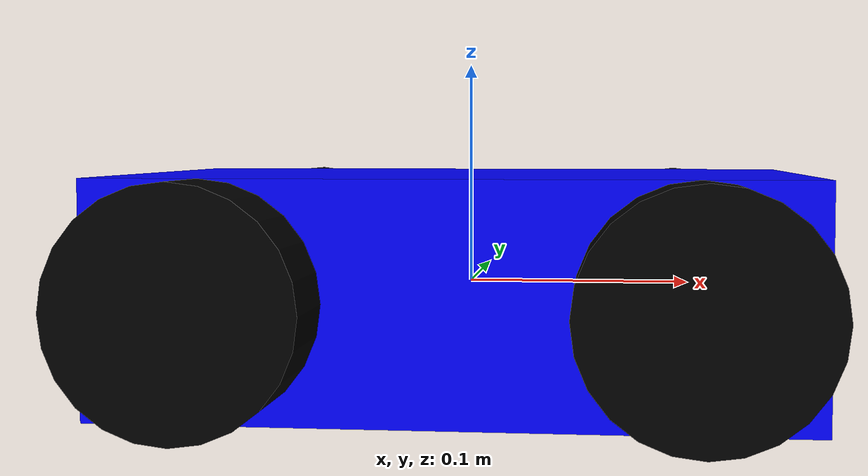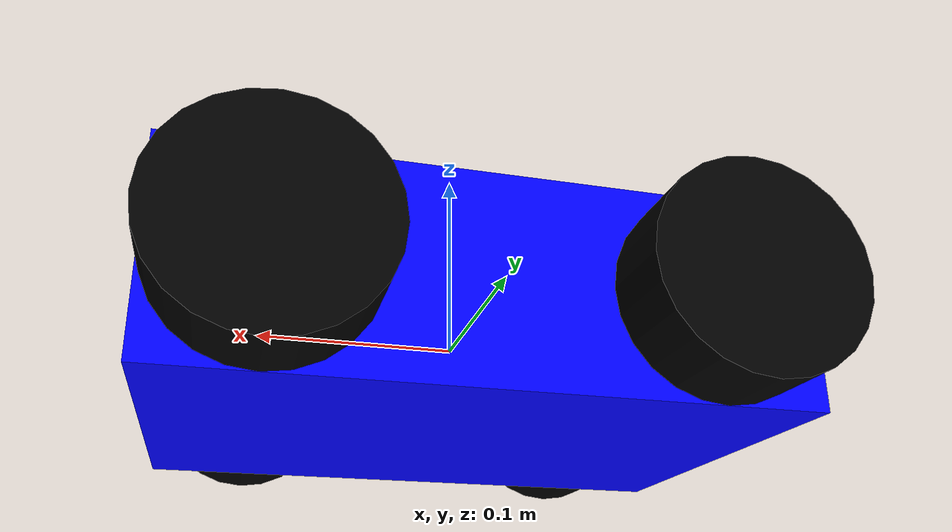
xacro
<?xml version="1.0"?>
<robot name="mi_robot" xmlns:xacro="http://www.ros.org/wiki/xacro">

  <!-- ========== VARIABLES ========== -->
  <xacro:property name="base_length"  value="0.3"/>  <!--Units: meters-->
  <xacro:property name="base_width"   value="0.2"/>
  <xacro:property name="base_height"  value="0.1"/>

  <xacro:property name="wheel_radius" value="0.05"/>
  <xacro:property name="wheel_width"  value="0.04"/>

  <!-- Base link-->
  <link name="base_link">
    <visual>
      <geometry>
        <box size="${base_length} ${base_width} ${base_height}"/>
      </geometry>
      <material name="blue">
        <color rgba="0 0 1 1"/>
      </material>
    </visual>
    <collision>
      <geometry>
        <box size="${base_length} ${base_width} ${base_height}"/>
      </geometry>
    </collision>
    <inertial>
      <mass value="1.0"/>
      <inertia
         ixx="${(1/12) * 1.0 * (base_height**2 + base_width**2)}"
         iyy="${(1/12) * 1.0 * (base_length**2 + base_height**2)}"
         izz="${(1/12) * 1.0 * (base_length**2 + base_width**2)}"
         ixy="0" ixz="0" iyz="0"/>
    </inertial>
  </link>

  <!-- Macro wheel: link + joint (with base link) -->
  <xacro:macro name="wheel" params="name x_pos y_pos">

    <link name="${name}_wheel">
      <visual>
        <geometry>
          <cylinder radius="${wheel_radius}" length="${wheel_width}"/>
        </geometry>
        <origin xyz="0 0 0" rpy="1.5708 0 0"/>
        <material name="black">
          <color rgba="0 0 0 1"/>
        </material>
      </visual>
      <collision>
        <geometry>
          <cylinder radius="${wheel_radius}" length="${wheel_width}"/>
        </geometry>
        <origin xyz="0 0 0" rpy="1.5708 0 0"/>
      </collision>
      <inertial>
        <mass value="0.2"/>
        <inertia
            ixx="${(1/12) * 0.2 * (3 * wheel_radius**2 + wheel_width**2)}"
            iyy="${(1/12) * 0.2 * (3 * wheel_radius**2 + wheel_width**2)}"
            izz="${(1/2)  * 0.2 * wheel_radius**2}"
            ixy="0" ixz="0" iyz="0"/>
      </inertial>
    </link>

    <joint name="${name}_joint" type="continuous">
      <parent link="base_link"/>
      <child  link="${name}_wheel"/>
      <origin xyz="${x_pos} ${y_pos} 0" rpy="0 0 0"/>
      <axis xyz="0 1 0"/>
    </joint>

  </xacro:macro>

  <!-- ========== INSTANCIAR RUEDAS ========== -->
  <!--                        name           x_pos               y_pos -->
  <xacro:wheel name="front_left"  x_pos=" 0.1"  y_pos=" 0.12"/>
  <xacro:wheel name="rear_left"   x_pos="-0.1"  y_pos=" 0.12"/>
  <xacro:wheel name="front_right" x_pos=" 0.1"  y_pos="-0.12"/>
  <xacro:wheel name="rear_right"  x_pos="-0.1"  y_pos="-0.12"/>

</robot>
